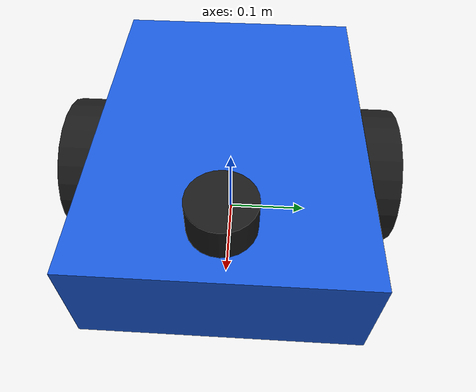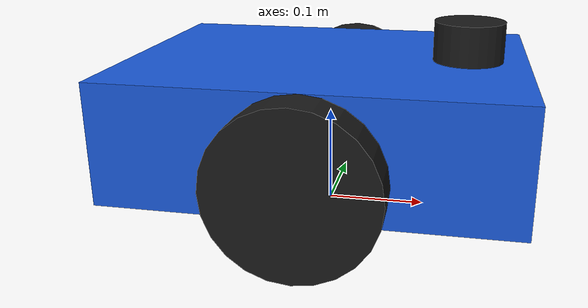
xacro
<?xml version="1.0"?>
<!-- Differential-drive mobile robot: Phase 0 toolchain-validation platform. -->
<robot xmlns:xacro="http://www.ros.org/wiki/xacro" name="diffbot">

  <xacro:arg name="use_sim" default="true"/>

  <!-- ================= geometry / mass params ================= -->
  <xacro:property name="base_len"   value="0.40"/>
  <xacro:property name="base_wid"   value="0.30"/>
  <xacro:property name="base_hei"   value="0.12"/>
  <xacro:property name="base_mass"  value="5.0"/>

  <xacro:property name="wheel_radius"     value="0.08"/>
  <xacro:property name="wheel_width"      value="0.04"/>
  <xacro:property name="wheel_mass"       value="0.5"/>
  <xacro:property name="wheel_separation" value="0.34"/>
  <xacro:property name="wheel_zoff"       value="0.02"/>

  <!-- ================= inertia macros ================= -->
  <xacro:macro name="box_inertia" params="m x y z">
    <inertial>
      <mass value="${m}"/>
      <inertia ixx="${m*(y*y+z*z)/12.0}" ixy="0" ixz="0"
               iyy="${m*(x*x+z*z)/12.0}" iyz="0"
               izz="${m*(x*x+y*y)/12.0}"/>
    </inertial>
  </xacro:macro>

  <xacro:macro name="cyl_inertia" params="m r l">
    <inertial>
      <mass value="${m}"/>
      <inertia ixx="${m*(3*r*r+l*l)/12.0}" ixy="0" ixz="0"
               iyy="${m*(3*r*r+l*l)/12.0}" iyz="0"
               izz="${m*r*r/2.0}"/>
    </inertial>
  </xacro:macro>

  <!-- ================= base ================= -->
  <link name="base_footprint"/>

  <link name="base_link">
    <visual>
      <geometry><box size="${base_len} ${base_wid} ${base_hei}"/></geometry>
      <material name="robot_blue"><color rgba="0.1 0.35 0.85 1"/></material>
    </visual>
    <collision>
      <geometry><box size="${base_len} ${base_wid} ${base_hei}"/></geometry>
    </collision>
    <xacro:box_inertia m="${base_mass}" x="${base_len}" y="${base_wid}" z="${base_hei}"/>
  </link>

  <joint name="base_joint" type="fixed">
    <parent link="base_footprint"/>
    <child  link="base_link"/>
    <origin xyz="0 0 ${wheel_radius + wheel_zoff}"/>
  </joint>

  <!-- ================= drive wheels ================= -->
  <xacro:macro name="wheel" params="prefix side_y">
    <link name="${prefix}_wheel">
      <visual>
        <origin rpy="1.5708 0 0"/>
        <geometry><cylinder radius="${wheel_radius}" length="${wheel_width}"/></geometry>
        <material name="rubber"><color rgba="0.1 0.1 0.1 1"/></material>
      </visual>
      <collision>
        <origin rpy="1.5708 0 0"/>
        <geometry><cylinder radius="${wheel_radius}" length="${wheel_width}"/></geometry>
      </collision>
      <xacro:cyl_inertia m="${wheel_mass}" r="${wheel_radius}" l="${wheel_width}"/>
    </link>

    <joint name="${prefix}_wheel_joint" type="continuous">
      <parent link="base_link"/>
      <child  link="${prefix}_wheel"/>
      <origin xyz="0 ${side_y} ${-wheel_zoff}"/>
      <axis xyz="0 1 0"/>
    </joint>
  </xacro:macro>

  <xacro:wheel prefix="left"  side_y="${ wheel_separation/2}"/>
  <xacro:wheel prefix="right" side_y="${-wheel_separation/2}"/>

  <xacro:macro name="caster" params="prefix x">
    <link name="${prefix}_caster">
      <visual><geometry><sphere radius="${wheel_radius*0.6}"/></geometry></visual>
      <collision><geometry><sphere radius="${wheel_radius*0.6}"/></geometry></collision>
      <xacro:cyl_inertia m="0.2" r="${wheel_radius*0.6}" l="0.02"/>
    </link>
    <joint name="${prefix}_caster_joint" type="fixed">
      <parent link="base_link"/>
      <child  link="${prefix}_caster"/>
      <origin xyz="${x} 0 ${-wheel_zoff - wheel_radius*0.4}"/>
    </joint>
  </xacro:macro>
  <xacro:caster prefix="front" x="${  base_len/2 - wheel_radius}"/>
  <xacro:caster prefix="rear"  x="${-(base_len/2 - wheel_radius)}"/>

  <!-- ================= ros2_control + Gazebo ================= -->
  <xacro:include filename="$(find vto_description)/urdf/mobile/diffbot.ros2_control.xacro"/>
  <!-- ================= 2D lidar (Phase 2: AMCL localization) ================= -->
  <link name="laser">
    <visual>
      <geometry><cylinder radius="0.035" length="0.04"/></geometry>
      <material name="lidar_black"><color rgba="0.1 0.1 0.1 1"/></material>
    </visual>
    <collision><geometry><cylinder radius="0.035" length="0.04"/></geometry></collision>
    <xacro:cyl_inertia m="0.1" r="0.035" l="0.04"/>
  </link>
  <joint name="laser_joint" type="fixed">
    <parent link="base_link"/>
    <child  link="laser"/>
    <origin xyz="${base_len/2 - 0.06} 0 ${base_hei/2 + 0.02}"/>
  </joint>

  <link name="imu_link">
    <xacro:box_inertia m="0.05" x="0.02" y="0.02" z="0.02"/>
  </link>
  <joint name="imu_joint" type="fixed">
    <parent link="base_link"/>
    <child  link="imu_link"/>
    <origin xyz="0 0 0"/>
  </joint>

  <xacro:include filename="$(find vto_description)/urdf/mobile/diffbot.gazebo.xacro"/>

</robot>
